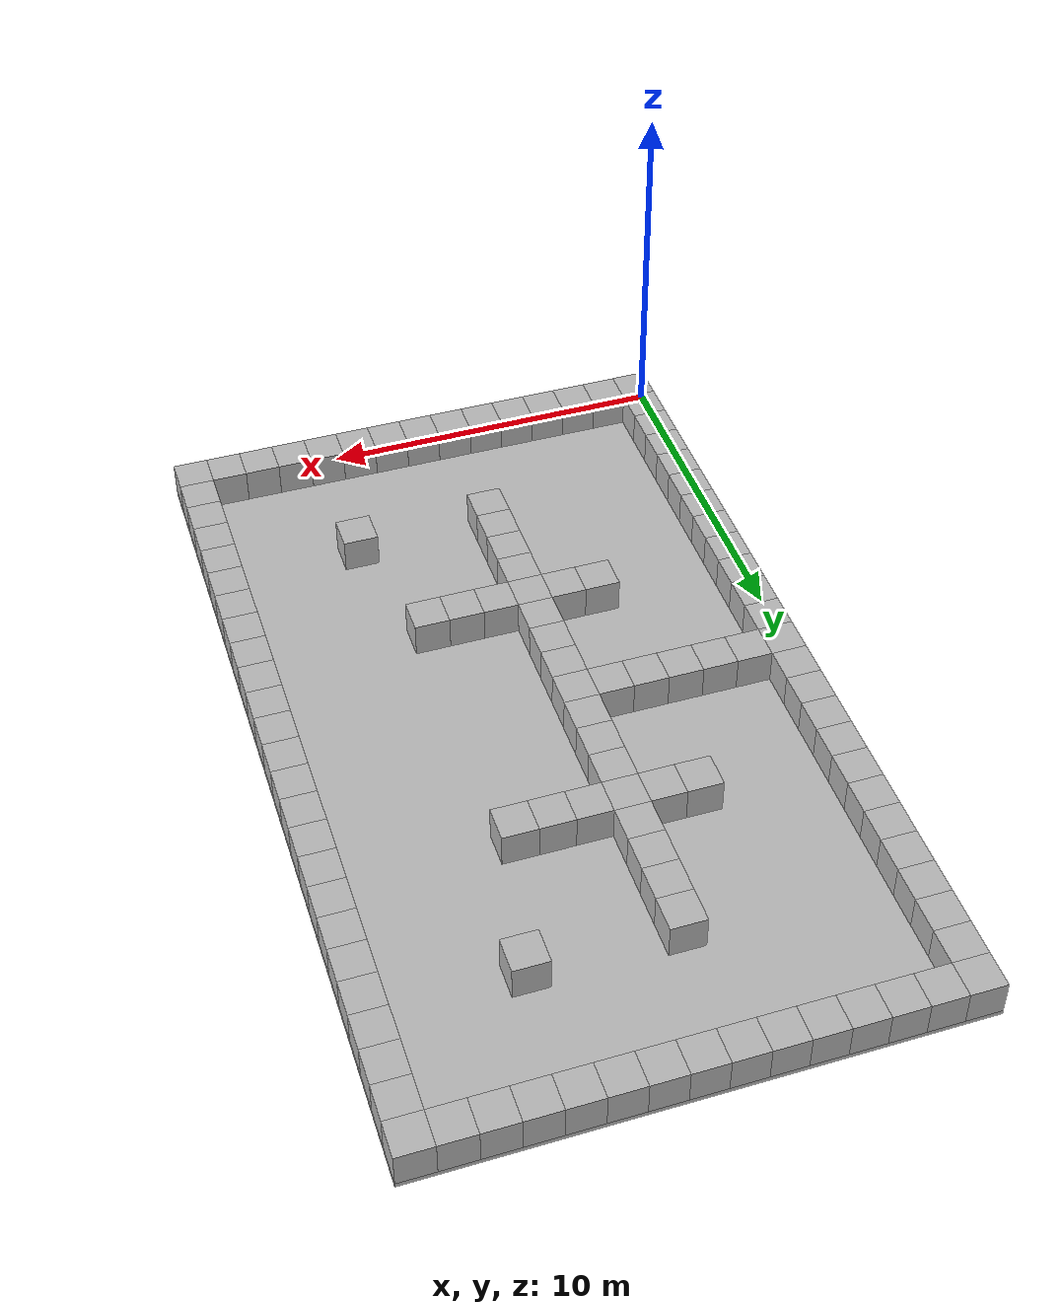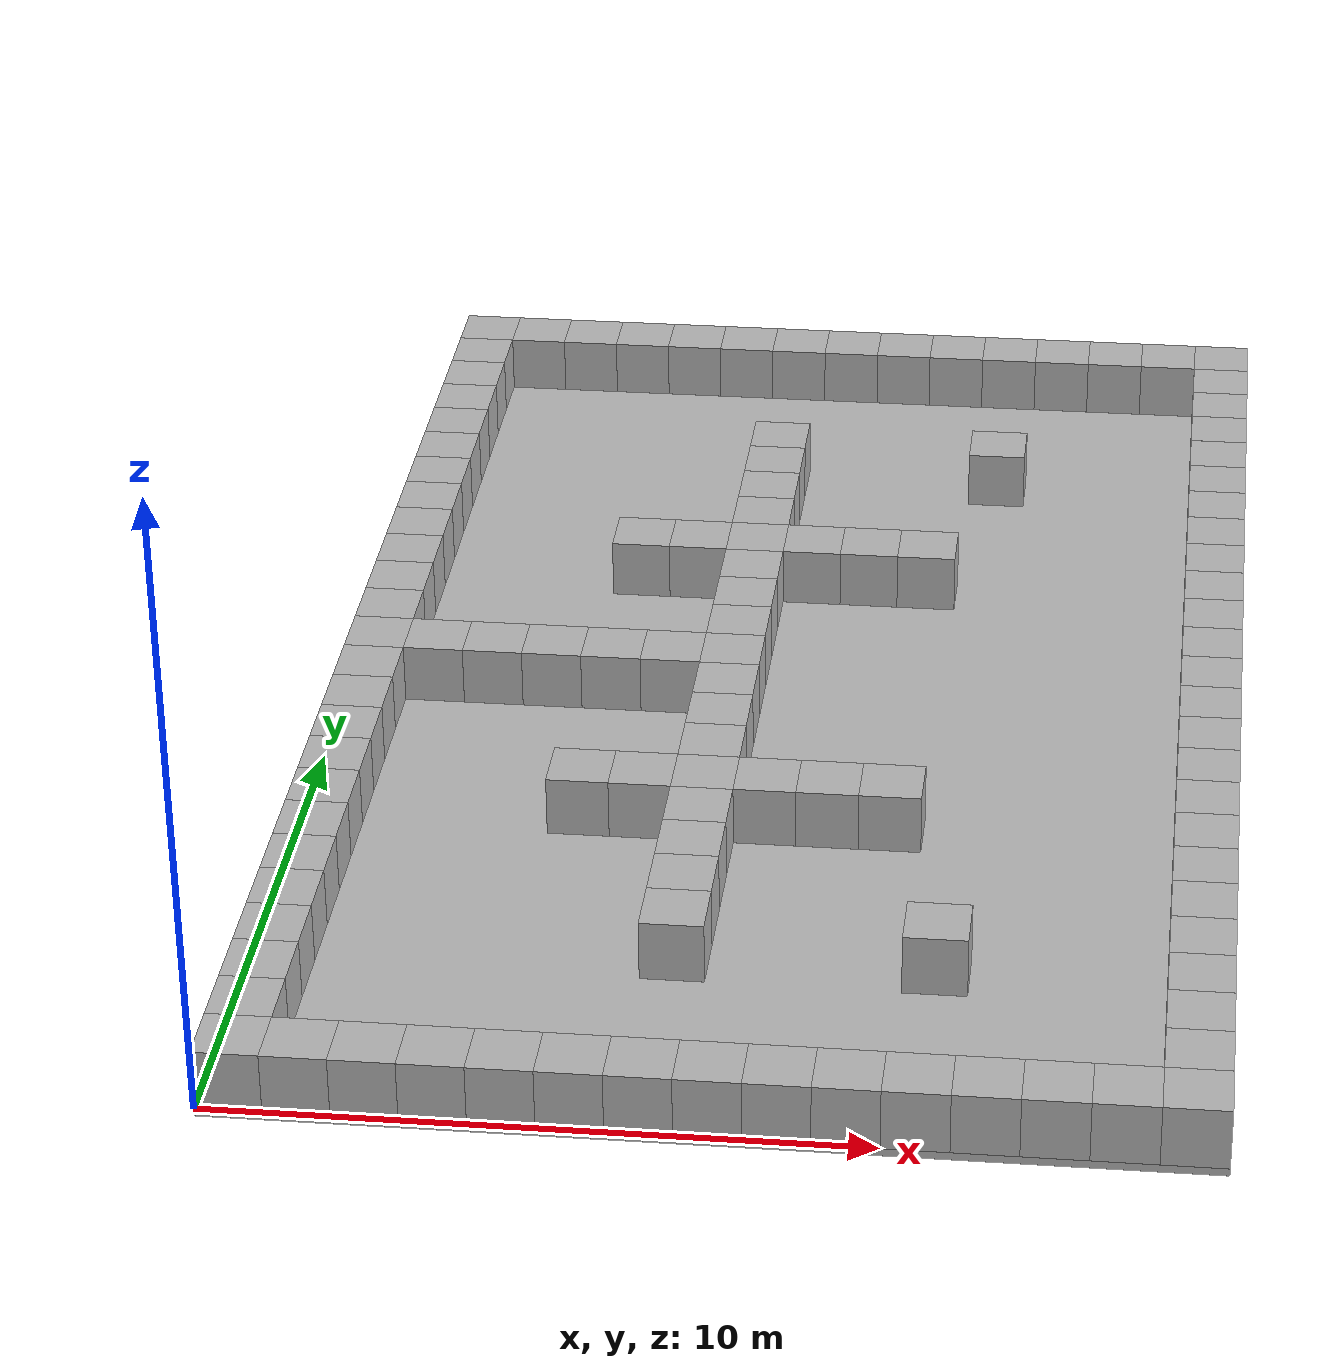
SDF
<sdf version="1.6">
 <world name="default">
  <physics name="default_physics" default="0" type="ode">
   <max_step_size>0.01</max_step_size>
   <real_time_factor>1</real_time_factor>
   <real_time_update_rate>100</real_time_update_rate>
  </physics>
  <model name="floor">
   <pose>7.5 12.5 -0.0625 0 -0 0</pose>
   <static>1</static>
   <link name="link">
    <collision name="collision"><geometry><box><size>15 25 0.125</size></box></geometry></collision>
    <visual name="visual"><geometry><box><size>15 25 0.125</size></box></geometry></visual>
   </link>
  </model>
  <model name="box_0_0">
   <pose>0.5 0.5 0.5 0 -0 0</pose>
   <static>1</static>
   <link name="link">
    <collision name="collision"><geometry><box><size>1 1 1</size></box></geometry></collision>
    <visual name="visual"><geometry><box><size>1 1 1</size></box></geometry></visual>
   </link>
  </model>
  <model name="box_0_1">
   <pose>0.5 1.5 0.5 0 -0 0</pose>
   <static>1</static>
   <link name="link">
    <collision name="collision"><geometry><box><size>1 1 1</size></box></geometry></collision>
    <visual name="visual"><geometry><box><size>1 1 1</size></box></geometry></visual>
   </link>
  </model>
  <model name="box_0_2">
   <pose>0.5 2.5 0.5 0 -0 0</pose>
   <static>1</static>
   <link name="link">
    <collision name="collision"><geometry><box><size>1 1 1</size></box></geometry></collision>
    <visual name="visual"><geometry><box><size>1 1 1</size></box></geometry></visual>
   </link>
  </model>
  <model name="box_0_3">
   <pose>0.5 3.5 0.5 0 -0 0</pose>
   <static>1</static>
   <link name="link">
    <collision name="collision"><geometry><box><size>1 1 1</size></box></geometry></collision>
    <visual name="visual"><geometry><box><size>1 1 1</size></box></geometry></visual>
   </link>
  </model>
  <model name="box_0_4">
   <pose>0.5 4.5 0.5 0 -0 0</pose>
   <static>1</static>
   <link name="link">
    <collision name="collision"><geometry><box><size>1 1 1</size></box></geometry></collision>
    <visual name="visual"><geometry><box><size>1 1 1</size></box></geometry></visual>
   </link>
  </model>
  <model name="box_0_5">
   <pose>0.5 5.5 0.5 0 -0 0</pose>
   <static>1</static>
   <link name="link">
    <collision name="collision"><geometry><box><size>1 1 1</size></box></geometry></collision>
    <visual name="visual"><geometry><box><size>1 1 1</size></box></geometry></visual>
   </link>
  </model>
  <model name="box_0_6">
   <pose>0.5 6.5 0.5 0 -0 0</pose>
   <static>1</static>
   <link name="link">
    <collision name="collision"><geometry><box><size>1 1 1</size></box></geometry></collision>
    <visual name="visual"><geometry><box><size>1 1 1</size></box></geometry></visual>
   </link>
  </model>
  <model name="box_0_7">
   <pose>0.5 7.5 0.5 0 -0 0</pose>
   <static>1</static>
   <link name="link">
    <collision name="collision"><geometry><box><size>1 1 1</size></box></geometry></collision>
    <visual name="visual"><geometry><box><size>1 1 1</size></box></geometry></visual>
   </link>
  </model>
  <model name="box_0_8">
   <pose>0.5 8.5 0.5 0 -0 0</pose>
   <static>1</static>
   <link name="link">
    <collision name="collision"><geometry><box><size>1 1 1</size></box></geometry></collision>
    <visual name="visual"><geometry><box><size>1 1 1</size></box></geometry></visual>
   </link>
  </model>
  <model name="box_0_9">
   <pose>0.5 9.5 0.5 0 -0 0</pose>
   <static>1</static>
   <link name="link">
    <collision name="collision"><geometry><box><size>1 1 1</size></box></geometry></collision>
    <visual name="visual"><geometry><box><size>1 1 1</size></box></geometry></visual>
   </link>
  </model>
  <model name="box_0_10">
   <pose>0.5 10.5 0.5 0 -0 0</pose>
   <static>1</static>
   <link name="link">
    <collision name="collision"><geometry><box><size>1 1 1</size></box></geometry></collision>
    <visual name="visual"><geometry><box><size>1 1 1</size></box></geometry></visual>
   </link>
  </model>
  <model name="box_0_11">
   <pose>0.5 11.5 0.5 0 -0 0</pose>
   <static>1</static>
   <link name="link">
    <collision name="collision"><geometry><box><size>1 1 1</size></box></geometry></collision>
    <visual name="visual"><geometry><box><size>1 1 1</size></box></geometry></visual>
   </link>
  </model>
  <model name="box_0_12">
   <pose>0.5 12.5 0.5 0 -0 0</pose>
   <static>1</static>
   <link name="link">
    <collision name="collision"><geometry><box><size>1 1 1</size></box></geometry></collision>
    <visual name="visual"><geometry><box><size>1 1 1</size></box></geometry></visual>
   </link>
  </model>
  <model name="box_0_13">
   <pose>0.5 13.5 0.5 0 -0 0</pose>
   <static>1</static>
   <link name="link">
    <collision name="collision"><geometry><box><size>1 1 1</size></box></geometry></collision>
    <visual name="visual"><geometry><box><size>1 1 1</size></box></geometry></visual>
   </link>
  </model>
  <model name="box_0_14">
   <pose>0.5 14.5 0.5 0 -0 0</pose>
   <static>1</static>
   <link name="link">
    <collision name="collision"><geometry><box><size>1 1 1</size></box></geometry></collision>
    <visual name="visual"><geometry><box><size>1 1 1</size></box></geometry></visual>
   </link>
  </model>
  <model name="box_0_15">
   <pose>0.5 15.5 0.5 0 -0 0</pose>
   <static>1</static>
   <link name="link">
    <collision name="collision"><geometry><box><size>1 1 1</size></box></geometry></collision>
    <visual name="visual"><geometry><box><size>1 1 1</size></box></geometry></visual>
   </link>
  </model>
  <model name="box_0_16">
   <pose>0.5 16.5 0.5 0 -0 0</pose>
   <static>1</static>
   <link name="link">
    <collision name="collision"><geometry><box><size>1 1 1</size></box></geometry></collision>
    <visual name="visual"><geometry><box><size>1 1 1</size></box></geometry></visual>
   </link>
  </model>
  <model name="box_0_17">
   <pose>0.5 17.5 0.5 0 -0 0</pose>
   <static>1</static>
   <link name="link">
    <collision name="collision"><geometry><box><size>1 1 1</size></box></geometry></collision>
    <visual name="visual"><geometry><box><size>1 1 1</size></box></geometry></visual>
   </link>
  </model>
  <model name="box_0_18">
   <pose>0.5 18.5 0.5 0 -0 0</pose>
   <static>1</static>
   <link name="link">
    <collision name="collision"><geometry><box><size>1 1 1</size></box></geometry></collision>
    <visual name="visual"><geometry><box><size>1 1 1</size></box></geometry></visual>
   </link>
  </model>
  <model name="box_0_19">
   <pose>0.5 19.5 0.5 0 -0 0</pose>
   <static>1</static>
   <link name="link">
    <collision name="collision"><geometry><box><size>1 1 1</size></box></geometry></collision>
    <visual name="visual"><geometry><box><size>1 1 1</size></box></geometry></visual>
   </link>
  </model>
  <model name="box_0_20">
   <pose>0.5 20.5 0.5 0 -0 0</pose>
   <static>1</static>
   <link name="link">
    <collision name="collision"><geometry><box><size>1 1 1</size></box></geometry></collision>
    <visual name="visual"><geometry><box><size>1 1 1</size></box></geometry></visual>
   </link>
  </model>
  <model name="box_0_21">
   <pose>0.5 21.5 0.5 0 -0 0</pose>
   <static>1</static>
   <link name="link">
    <collision name="collision"><geometry><box><size>1 1 1</size></box></geometry></collision>
    <visual name="visual"><geometry><box><size>1 1 1</size></box></geometry></visual>
   </link>
  </model>
  <model name="box_0_22">
   <pose>0.5 22.5 0.5 0 -0 0</pose>
   <static>1</static>
   <link name="link">
    <collision name="collision"><geometry><box><size>1 1 1</size></box></geometry></collision>
    <visual name="visual"><geometry><box><size>1 1 1</size></box></geometry></visual>
   </link>
  </model>
  <model name="box_0_23">
   <pose>0.5 23.5 0.5 0 -0 0</pose>
   <static>1</static>
   <link name="link">
    <collision name="collision"><geometry><box><size>1 1 1</size></box></geometry></collision>
    <visual name="visual"><geometry><box><size>1 1 1</size></box></geometry></visual>
   </link>
  </model>
  <model name="box_0_24">
   <pose>0.5 24.5 0.5 0 -0 0</pose>
   <static>1</static>
   <link name="link">
    <collision name="collision"><geometry><box><size>1 1 1</size></box></geometry></collision>
    <visual name="visual"><geometry><box><size>1 1 1</size></box></geometry></visual>
   </link>
  </model>
  <model name="box_1_0">
   <pose>1.5 0.5 0.5 0 -0 0</pose>
   <static>1</static>
   <link name="link">
    <collision name="collision"><geometry><box><size>1 1 1</size></box></geometry></collision>
    <visual name="visual"><geometry><box><size>1 1 1</size></box></geometry></visual>
   </link>
  </model>
  <model name="box_1_12">
   <pose>1.5 12.5 0.5 0 -0 0</pose>
   <static>1</static>
   <link name="link">
    <collision name="collision"><geometry><box><size>1 1 1</size></box></geometry></collision>
    <visual name="visual"><geometry><box><size>1 1 1</size></box></geometry></visual>
   </link>
  </model>
  <model name="box_1_24">
   <pose>1.5 24.5 0.5 0 -0 0</pose>
   <static>1</static>
   <link name="link">
    <collision name="collision"><geometry><box><size>1 1 1</size></box></geometry></collision>
    <visual name="visual"><geometry><box><size>1 1 1</size></box></geometry></visual>
   </link>
  </model>
  <model name="box_2_0">
   <pose>2.5 0.5 0.5 0 -0 0</pose>
   <static>1</static>
   <link name="link">
    <collision name="collision"><geometry><box><size>1 1 1</size></box></geometry></collision>
    <visual name="visual"><geometry><box><size>1 1 1</size></box></geometry></visual>
   </link>
  </model>
  <model name="box_2_12">
   <pose>2.5 12.5 0.5 0 -0 0</pose>
   <static>1</static>
   <link name="link">
    <collision name="collision"><geometry><box><size>1 1 1</size></box></geometry></collision>
    <visual name="visual"><geometry><box><size>1 1 1</size></box></geometry></visual>
   </link>
  </model>
  <model name="box_2_24">
   <pose>2.5 24.5 0.5 0 -0 0</pose>
   <static>1</static>
   <link name="link">
    <collision name="collision"><geometry><box><size>1 1 1</size></box></geometry></collision>
    <visual name="visual"><geometry><box><size>1 1 1</size></box></geometry></visual>
   </link>
  </model>
  <model name="box_3_0">
   <pose>3.5 0.5 0.5 0 -0 0</pose>
   <static>1</static>
   <link name="link">
    <collision name="collision"><geometry><box><size>1 1 1</size></box></geometry></collision>
    <visual name="visual"><geometry><box><size>1 1 1</size></box></geometry></visual>
   </link>
  </model>
  <model name="box_3_12">
   <pose>3.5 12.5 0.5 0 -0 0</pose>
   <static>1</static>
   <link name="link">
    <collision name="collision"><geometry><box><size>1 1 1</size></box></geometry></collision>
    <visual name="visual"><geometry><box><size>1 1 1</size></box></geometry></visual>
   </link>
  </model>
  <model name="box_3_24">
   <pose>3.5 24.5 0.5 0 -0 0</pose>
   <static>1</static>
   <link name="link">
    <collision name="collision"><geometry><box><size>1 1 1</size></box></geometry></collision>
    <visual name="visual"><geometry><box><size>1 1 1</size></box></geometry></visual>
   </link>
  </model>
  <model name="box_4_0">
   <pose>4.5 0.5 0.5 0 -0 0</pose>
   <static>1</static>
   <link name="link">
    <collision name="collision"><geometry><box><size>1 1 1</size></box></geometry></collision>
    <visual name="visual"><geometry><box><size>1 1 1</size></box></geometry></visual>
   </link>
  </model>
  <model name="box_4_8">
   <pose>4.5 8.5 0.5 0 -0 0</pose>
   <static>1</static>
   <link name="link">
    <collision name="collision"><geometry><box><size>1 1 1</size></box></geometry></collision>
    <visual name="visual"><geometry><box><size>1 1 1</size></box></geometry></visual>
   </link>
  </model>
  <model name="box_4_12">
   <pose>4.5 12.5 0.5 0 -0 0</pose>
   <static>1</static>
   <link name="link">
    <collision name="collision"><geometry><box><size>1 1 1</size></box></geometry></collision>
    <visual name="visual"><geometry><box><size>1 1 1</size></box></geometry></visual>
   </link>
  </model>
  <model name="box_4_16">
   <pose>4.5 16.5 0.5 0 -0 0</pose>
   <static>1</static>
   <link name="link">
    <collision name="collision"><geometry><box><size>1 1 1</size></box></geometry></collision>
    <visual name="visual"><geometry><box><size>1 1 1</size></box></geometry></visual>
   </link>
  </model>
  <model name="box_4_24">
   <pose>4.5 24.5 0.5 0 -0 0</pose>
   <static>1</static>
   <link name="link">
    <collision name="collision"><geometry><box><size>1 1 1</size></box></geometry></collision>
    <visual name="visual"><geometry><box><size>1 1 1</size></box></geometry></visual>
   </link>
  </model>
  <model name="box_5_0">
   <pose>5.5 0.5 0.5 0 -0 0</pose>
   <static>1</static>
   <link name="link">
    <collision name="collision"><geometry><box><size>1 1 1</size></box></geometry></collision>
    <visual name="visual"><geometry><box><size>1 1 1</size></box></geometry></visual>
   </link>
  </model>
  <model name="box_5_8">
   <pose>5.5 8.5 0.5 0 -0 0</pose>
   <static>1</static>
   <link name="link">
    <collision name="collision"><geometry><box><size>1 1 1</size></box></geometry></collision>
    <visual name="visual"><geometry><box><size>1 1 1</size></box></geometry></visual>
   </link>
  </model>
  <model name="box_5_12">
   <pose>5.5 12.5 0.5 0 -0 0</pose>
   <static>1</static>
   <link name="link">
    <collision name="collision"><geometry><box><size>1 1 1</size></box></geometry></collision>
    <visual name="visual"><geometry><box><size>1 1 1</size></box></geometry></visual>
   </link>
  </model>
  <model name="box_5_16">
   <pose>5.5 16.5 0.5 0 -0 0</pose>
   <static>1</static>
   <link name="link">
    <collision name="collision"><geometry><box><size>1 1 1</size></box></geometry></collision>
    <visual name="visual"><geometry><box><size>1 1 1</size></box></geometry></visual>
   </link>
  </model>
  <model name="box_5_24">
   <pose>5.5 24.5 0.5 0 -0 0</pose>
   <static>1</static>
   <link name="link">
    <collision name="collision"><geometry><box><size>1 1 1</size></box></geometry></collision>
    <visual name="visual"><geometry><box><size>1 1 1</size></box></geometry></visual>
   </link>
  </model>
  <model name="box_6_0">
   <pose>6.5 0.5 0.5 0 -0 0</pose>
   <static>1</static>
   <link name="link">
    <collision name="collision"><geometry><box><size>1 1 1</size></box></geometry></collision>
    <visual name="visual"><geometry><box><size>1 1 1</size></box></geometry></visual>
   </link>
  </model>
  <model name="box_6_4">
   <pose>6.5 4.5 0.5 0 -0 0</pose>
   <static>1</static>
   <link name="link">
    <collision name="collision"><geometry><box><size>1 1 1</size></box></geometry></collision>
    <visual name="visual"><geometry><box><size>1 1 1</size></box></geometry></visual>
   </link>
  </model>
  <model name="box_6_5">
   <pose>6.5 5.5 0.5 0 -0 0</pose>
   <static>1</static>
   <link name="link">
    <collision name="collision"><geometry><box><size>1 1 1</size></box></geometry></collision>
    <visual name="visual"><geometry><box><size>1 1 1</size></box></geometry></visual>
   </link>
  </model>
  <model name="box_6_6">
   <pose>6.5 6.5 0.5 0 -0 0</pose>
   <static>1</static>
   <link name="link">
    <collision name="collision"><geometry><box><size>1 1 1</size></box></geometry></collision>
    <visual name="visual"><geometry><box><size>1 1 1</size></box></geometry></visual>
   </link>
  </model>
  <model name="box_6_7">
   <pose>6.5 7.5 0.5 0 -0 0</pose>
   <static>1</static>
   <link name="link">
    <collision name="collision"><geometry><box><size>1 1 1</size></box></geometry></collision>
    <visual name="visual"><geometry><box><size>1 1 1</size></box></geometry></visual>
   </link>
  </model>
  <model name="box_6_8">
   <pose>6.5 8.5 0.5 0 -0 0</pose>
   <static>1</static>
   <link name="link">
    <collision name="collision"><geometry><box><size>1 1 1</size></box></geometry></collision>
    <visual name="visual"><geometry><box><size>1 1 1</size></box></geometry></visual>
   </link>
  </model>
  <model name="box_6_9">
   <pose>6.5 9.5 0.5 0 -0 0</pose>
   <static>1</static>
   <link name="link">
    <collision name="collision"><geometry><box><size>1 1 1</size></box></geometry></collision>
    <visual name="visual"><geometry><box><size>1 1 1</size></box></geometry></visual>
   </link>
  </model>
  <model name="box_6_10">
   <pose>6.5 10.5 0.5 0 -0 0</pose>
   <static>1</static>
   <link name="link">
    <collision name="collision"><geometry><box><size>1 1 1</size></box></geometry></collision>
    <visual name="visual"><geometry><box><size>1 1 1</size></box></geometry></visual>
   </link>
  </model>
  <model name="box_6_11">
   <pose>6.5 11.5 0.5 0 -0 0</pose>
   <static>1</static>
   <link name="link">
    <collision name="collision"><geometry><box><size>1 1 1</size></box></geometry></collision>
    <visual name="visual"><geometry><box><size>1 1 1</size></box></geometry></visual>
   </link>
  </model>
  <model name="box_6_12">
   <pose>6.5 12.5 0.5 0 -0 0</pose>
   <static>1</static>
   <link name="link">
    <collision name="collision"><geometry><box><size>1 1 1</size></box></geometry></collision>
    <visual name="visual"><geometry><box><size>1 1 1</size></box></geometry></visual>
   </link>
  </model>
  <model name="box_6_13">
   <pose>6.5 13.5 0.5 0 -0 0</pose>
   <static>1</static>
   <link name="link">
    <collision name="collision"><geometry><box><size>1 1 1</size></box></geometry></collision>
    <visual name="visual"><geometry><box><size>1 1 1</size></box></geometry></visual>
   </link>
  </model>
  <model name="box_6_14">
   <pose>6.5 14.5 0.5 0 -0 0</pose>
   <static>1</static>
   <link name="link">
    <collision name="collision"><geometry><box><size>1 1 1</size></box></geometry></collision>
    <visual name="visual"><geometry><box><size>1 1 1</size></box></geometry></visual>
   </link>
  </model>
  <model name="box_6_15">
   <pose>6.5 15.5 0.5 0 -0 0</pose>
   <static>1</static>
   <link name="link">
    <collision name="collision"><geometry><box><size>1 1 1</size></box></geometry></collision>
    <visual name="visual"><geometry><box><size>1 1 1</size></box></geometry></visual>
   </link>
  </model>
  <model name="box_6_16">
   <pose>6.5 16.5 0.5 0 -0 0</pose>
   <static>1</static>
   <link name="link">
    <collision name="collision"><geometry><box><size>1 1 1</size></box></geometry></collision>
    <visual name="visual"><geometry><box><size>1 1 1</size></box></geometry></visual>
   </link>
  </model>
  <model name="box_6_17">
   <pose>6.5 17.5 0.5 0 -0 0</pose>
   <static>1</static>
   <link name="link">
    <collision name="collision"><geometry><box><size>1 1 1</size></box></geometry></collision>
    <visual name="visual"><geometry><box><size>1 1 1</size></box></geometry></visual>
   </link>
  </model>
  <model name="box_6_18">
   <pose>6.5 18.5 0.5 0 -0 0</pose>
   <static>1</static>
   <link name="link">
    <collision name="collision"><geometry><box><size>1 1 1</size></box></geometry></collision>
    <visual name="visual"><geometry><box><size>1 1 1</size></box></geometry></visual>
   </link>
  </model>
  <model name="box_6_19">
   <pose>6.5 19.5 0.5 0 -0 0</pose>
   <static>1</static>
   <link name="link">
    <collision name="collision"><geometry><box><size>1 1 1</size></box></geometry></collision>
    <visual name="visual"><geometry><box><size>1 1 1</size></box></geometry></visual>
   </link>
  </model>
  <model name="box_6_20">
   <pose>6.5 20.5 0.5 0 -0 0</pose>
   <static>1</static>
   <link name="link">
    <collision name="collision"><geometry><box><size>1 1 1</size></box></geometry></collision>
    <visual name="visual"><geometry><box><size>1 1 1</size></box></geometry></visual>
   </link>
  </model>
  <model name="box_6_24">
   <pose>6.5 24.5 0.5 0 -0 0</pose>
   <static>1</static>
   <link name="link">
    <collision name="collision"><geometry><box><size>1 1 1</size></box></geometry></collision>
    <visual name="visual"><geometry><box><size>1 1 1</size></box></geometry></visual>
   </link>
  </model>
  <model name="box_7_0">
   <pose>7.5 0.5 0.5 0 -0 0</pose>
   <static>1</static>
   <link name="link">
    <collision name="collision"><geometry><box><size>1 1 1</size></box></geometry></collision>
    <visual name="visual"><geometry><box><size>1 1 1</size></box></geometry></visual>
   </link>
  </model>
  <model name="box_7_8">
   <pose>7.5 8.5 0.5 0 -0 0</pose>
   <static>1</static>
   <link name="link">
    <collision name="collision"><geometry><box><size>1 1 1</size></box></geometry></collision>
    <visual name="visual"><geometry><box><size>1 1 1</size></box></geometry></visual>
   </link>
  </model>
  <model name="box_7_16">
   <pose>7.5 16.5 0.5 0 -0 0</pose>
   <static>1</static>
   <link name="link">
    <collision name="collision"><geometry><box><size>1 1 1</size></box></geometry></collision>
    <visual name="visual"><geometry><box><size>1 1 1</size></box></geometry></visual>
   </link>
  </model>
  <model name="box_7_24">
   <pose>7.5 24.5 0.5 0 -0 0</pose>
   <static>1</static>
   <link name="link">
    <collision name="collision"><geometry><box><size>1 1 1</size></box></geometry></collision>
    <visual name="visual"><geometry><box><size>1 1 1</size></box></geometry></visual>
   </link>
  </model>
  <model name="box_8_0">
   <pose>8.5 0.5 0.5 0 -0 0</pose>
   <static>1</static>
   <link name="link">
    <collision name="collision"><geometry><box><size>1 1 1</size></box></geometry></collision>
    <visual name="visual"><geometry><box><size>1 1 1</size></box></geometry></visual>
   </link>
  </model>
  <model name="box_8_8">
   <pose>8.5 8.5 0.5 0 -0 0</pose>
   <static>1</static>
   <link name="link">
    <collision name="collision"><geometry><box><size>1 1 1</size></box></geometry></collision>
    <visual name="visual"><geometry><box><size>1 1 1</size></box></geometry></visual>
   </link>
  </model>
  <model name="box_8_16">
   <pose>8.5 16.5 0.5 0 -0 0</pose>
   <static>1</static>
   <link name="link">
    <collision name="collision"><geometry><box><size>1 1 1</size></box></geometry></collision>
    <visual name="visual"><geometry><box><size>1 1 1</size></box></geometry></visual>
   </link>
  </model>
  <model name="box_8_24">
   <pose>8.5 24.5 0.5 0 -0 0</pose>
   <static>1</static>
   <link name="link">
    <collision name="collision"><geometry><box><size>1 1 1</size></box></geometry></collision>
    <visual name="visual"><geometry><box><size>1 1 1</size></box></geometry></visual>
   </link>
  </model>
  <model name="box_9_0">
   <pose>9.5 0.5 0.5 0 -0 0</pose>
   <static>1</static>
   <link name="link">
    <collision name="collision"><geometry><box><size>1 1 1</size></box></geometry></collision>
    <visual name="visual"><geometry><box><size>1 1 1</size></box></geometry></visual>
   </link>
  </model>
  <model name="box_9_8">
   <pose>9.5 8.5 0.5 0 -0 0</pose>
   <static>1</static>
   <link name="link">
    <collision name="collision"><geometry><box><size>1 1 1</size></box></geometry></collision>
    <visual name="visual"><geometry><box><size>1 1 1</size></box></geometry></visual>
   </link>
  </model>
  <model name="box_9_16">
   <pose>9.5 16.5 0.5 0 -0 0</pose>
   <static>1</static>
   <link name="link">
    <collision name="collision"><geometry><box><size>1 1 1</size></box></geometry></collision>
    <visual name="visual"><geometry><box><size>1 1 1</size></box></geometry></visual>
   </link>
  </model>
  <model name="box_9_24">
   <pose>9.5 24.5 0.5 0 -0 0</pose>
   <static>1</static>
   <link name="link">
    <collision name="collision"><geometry><box><size>1 1 1</size></box></geometry></collision>
    <visual name="visual"><geometry><box><size>1 1 1</size></box></geometry></visual>
   </link>
  </model>
  <model name="box_10_0">
   <pose>10.5 0.5 0.5 0 -0 0</pose>
   <static>1</static>
   <link name="link">
    <collision name="collision"><geometry><box><size>1 1 1</size></box></geometry></collision>
    <visual name="visual"><geometry><box><size>1 1 1</size></box></geometry></visual>
   </link>
  </model>
  <model name="box_10_4">
   <pose>10.5 4.5 0.5 0 -0 0</pose>
   <static>1</static>
   <link name="link">
    <collision name="collision"><geometry><box><size>1 1 1</size></box></geometry></collision>
    <visual name="visual"><geometry><box><size>1 1 1</size></box></geometry></visual>
   </link>
  </model>
  <model name="box_10_20">
   <pose>10.5 20.5 0.5 0 -0 0</pose>
   <static>1</static>
   <link name="link">
    <collision name="collision"><geometry><box><size>1 1 1</size></box></geometry></collision>
    <visual name="visual"><geometry><box><size>1 1 1</size></box></geometry></visual>
   </link>
  </model>
  <model name="box_10_24">
   <pose>10.5 24.5 0.5 0 -0 0</pose>
   <static>1</static>
   <link name="link">
    <collision name="collision"><geometry><box><size>1 1 1</size></box></geometry></collision>
    <visual name="visual"><geometry><box><size>1 1 1</size></box></geometry></visual>
   </link>
  </model>
  <model name="box_11_0">
   <pose>11.5 0.5 0.5 0 -0 0</pose>
   <static>1</static>
   <link name="link">
    <collision name="collision"><geometry><box><size>1 1 1</size></box></geometry></collision>
    <visual name="visual"><geometry><box><size>1 1 1</size></box></geometry></visual>
   </link>
  </model>
  <model name="box_11_24">
   <pose>11.5 24.5 0.5 0 -0 0</pose>
   <static>1</static>
   <link name="link">
    <collision name="collision"><geometry><box><size>1 1 1</size></box></geometry></collision>
    <visual name="visual"><geometry><box><size>1 1 1</size></box></geometry></visual>
   </link>
  </model>
  <model name="box_12_0">
   <pose>12.5 0.5 0.5 0 -0 0</pose>
   <static>1</static>
   <link name="link">
    <collision name="collision"><geometry><box><size>1 1 1</size></box></geometry></collision>
    <visual name="visual"><geometry><box><size>1 1 1</size></box></geometry></visual>
   </link>
  </model>
  <model name="box_12_24">
   <pose>12.5 24.5 0.5 0 -0 0</pose>
   <static>1</static>
   <link name="link">
    <collision name="collision"><geometry><box><size>1 1 1</size></box></geometry></collision>
    <visual name="visual"><geometry><box><size>1 1 1</size></box></geometry></visual>
   </link>
  </model>
  <model name="box_13_0">
   <pose>13.5 0.5 0.5 0 -0 0</pose>
   <static>1</static>
   <link name="link">
    <collision name="collision"><geometry><box><size>1 1 1</size></box></geometry></collision>
    <visual name="visual"><geometry><box><size>1 1 1</size></box></geometry></visual>
   </link>
  </model>
  <model name="box_13_24">
   <pose>13.5 24.5 0.5 0 -0 0</pose>
   <static>1</static>
   <link name="link">
    <collision name="collision"><geometry><box><size>1 1 1</size></box></geometry></collision>
    <visual name="visual"><geometry><box><size>1 1 1</size></box></geometry></visual>
   </link>
  </model>
  <model name="box_14_0">
   <pose>14.5 0.5 0.5 0 -0 0</pose>
   <static>1</static>
   <link name="link">
    <collision name="collision"><geometry><box><size>1 1 1</size></box></geometry></collision>
    <visual name="visual"><geometry><box><size>1 1 1</size></box></geometry></visual>
   </link>
  </model>
  <model name="box_14_1">
   <pose>14.5 1.5 0.5 0 -0 0</pose>
   <static>1</static>
   <link name="link">
    <collision name="collision"><geometry><box><size>1 1 1</size></box></geometry></collision>
    <visual name="visual"><geometry><box><size>1 1 1</size></box></geometry></visual>
   </link>
  </model>
  <model name="box_14_2">
   <pose>14.5 2.5 0.5 0 -0 0</pose>
   <static>1</static>
   <link name="link">
    <collision name="collision"><geometry><box><size>1 1 1</size></box></geometry></collision>
    <visual name="visual"><geometry><box><size>1 1 1</size></box></geometry></visual>
   </link>
  </model>
  <model name="box_14_3">
   <pose>14.5 3.5 0.5 0 -0 0</pose>
   <static>1</static>
   <link name="link">
    <collision name="collision"><geometry><box><size>1 1 1</size></box></geometry></collision>
    <visual name="visual"><geometry><box><size>1 1 1</size></box></geometry></visual>
   </link>
  </model>
  <model name="box_14_4">
   <pose>14.5 4.5 0.5 0 -0 0</pose>
   <static>1</static>
   <link name="link">
    <collision name="collision"><geometry><box><size>1 1 1</size></box></geometry></collision>
    <visual name="visual"><geometry><box><size>1 1 1</size></box></geometry></visual>
   </link>
  </model>
  <model name="box_14_5">
   <pose>14.5 5.5 0.5 0 -0 0</pose>
   <static>1</static>
   <link name="link">
    <collision name="collision"><geometry><box><size>1 1 1</size></box></geometry></collision>
    <visual name="visual"><geometry><box><size>1 1 1</size></box></geometry></visual>
   </link>
  </model>
  <model name="box_14_6">
   <pose>14.5 6.5 0.5 0 -0 0</pose>
   <static>1</static>
   <link name="link">
    <collision name="collision"><geometry><box><size>1 1 1</size></box></geometry></collision>
    <visual name="visual"><geometry><box><size>1 1 1</size></box></geometry></visual>
   </link>
  </model>
  <model name="box_14_7">
   <pose>14.5 7.5 0.5 0 -0 0</pose>
   <static>1</static>
   <link name="link">
    <collision name="collision"><geometry><box><size>1 1 1</size></box></geometry></collision>
    <visual name="visual"><geometry><box><size>1 1 1</size></box></geometry></visual>
   </link>
  </model>
  <model name="box_14_8">
   <pose>14.5 8.5 0.5 0 -0 0</pose>
   <static>1</static>
   <link name="link">
    <collision name="collision"><geometry><box><size>1 1 1</size></box></geometry></collision>
    <visual name="visual"><geometry><box><size>1 1 1</size></box></geometry></visual>
   </link>
  </model>
  <model name="box_14_9">
   <pose>14.5 9.5 0.5 0 -0 0</pose>
   <static>1</static>
   <link name="link">
    <collision name="collision"><geometry><box><size>1 1 1</size></box></geometry></collision>
    <visual name="visual"><geometry><box><size>1 1 1</size></box></geometry></visual>
   </link>
  </model>
  <model name="box_14_10">
   <pose>14.5 10.5 0.5 0 -0 0</pose>
   <static>1</static>
   <link name="link">
    <collision name="collision"><geometry><box><size>1 1 1</size></box></geometry></collision>
    <visual name="visual"><geometry><box><size>1 1 1</size></box></geometry></visual>
   </link>
  </model>
  <model name="box_14_11">
   <pose>14.5 11.5 0.5 0 -0 0</pose>
   <static>1</static>
   <link name="link">
    <collision name="collision"><geometry><box><size>1 1 1</size></box></geometry></collision>
    <visual name="visual"><geometry><box><size>1 1 1</size></box></geometry></visual>
   </link>
  </model>
  <model name="box_14_12">
   <pose>14.5 12.5 0.5 0 -0 0</pose>
   <static>1</static>
   <link name="link">
    <collision name="collision"><geometry><box><size>1 1 1</size></box></geometry></collision>
    <visual name="visual"><geometry><box><size>1 1 1</size></box></geometry></visual>
   </link>
  </model>
  <model name="box_14_13">
   <pose>14.5 13.5 0.5 0 -0 0</pose>
   <static>1</static>
   <link name="link">
    <collision name="collision"><geometry><box><size>1 1 1</size></box></geometry></collision>
    <visual name="visual"><geometry><box><size>1 1 1</size></box></geometry></visual>
   </link>
  </model>
  <model name="box_14_14">
   <pose>14.5 14.5 0.5 0 -0 0</pose>
   <static>1</static>
   <link name="link">
    <collision name="collision"><geometry><box><size>1 1 1</size></box></geometry></collision>
    <visual name="visual"><geometry><box><size>1 1 1</size></box></geometry></visual>
   </link>
  </model>
  <model name="box_14_15">
   <pose>14.5 15.5 0.5 0 -0 0</pose>
   <static>1</static>
   <link name="link">
    <collision name="collision"><geometry><box><size>1 1 1</size></box></geometry></collision>
    <visual name="visual"><geometry><box><size>1 1 1</size></box></geometry></visual>
   </link>
  </model>
  <model name="box_14_16">
   <pose>14.5 16.5 0.5 0 -0 0</pose>
   <static>1</static>
   <link name="link">
    <collision name="collision"><geometry><box><size>1 1 1</size></box></geometry></collision>
    <visual name="visual"><geometry><box><size>1 1 1</size></box></geometry></visual>
   </link>
  </model>
  <model name="box_14_17">
   <pose>14.5 17.5 0.5 0 -0 0</pose>
   <static>1</static>
   <link name="link">
    <collision name="collision"><geometry><box><size>1 1 1</size></box></geometry></collision>
    <visual name="visual"><geometry><box><size>1 1 1</size></box></geometry></visual>
   </link>
  </model>
  <model name="box_14_18">
   <pose>14.5 18.5 0.5 0 -0 0</pose>
   <static>1</static>
   <link name="link">
    <collision name="collision"><geometry><box><size>1 1 1</size></box></geometry></collision>
    <visual name="visual"><geometry><box><size>1 1 1</size></box></geometry></visual>
   </link>
  </model>
  <model name="box_14_19">
   <pose>14.5 19.5 0.5 0 -0 0</pose>
   <static>1</static>
   <link name="link">
    <collision name="collision"><geometry><box><size>1 1 1</size></box></geometry></collision>
    <visual name="visual"><geometry><box><size>1 1 1</size></box></geometry></visual>
   </link>
  </model>
  <model name="box_14_20">
   <pose>14.5 20.5 0.5 0 -0 0</pose>
   <static>1</static>
   <link name="link">
    <collision name="collision"><geometry><box><size>1 1 1</size></box></geometry></collision>
    <visual name="visual"><geometry><box><size>1 1 1</size></box></geometry></visual>
   </link>
  </model>
  <model name="box_14_21">
   <pose>14.5 21.5 0.5 0 -0 0</pose>
   <static>1</static>
   <link name="link">
    <collision name="collision"><geometry><box><size>1 1 1</size></box></geometry></collision>
    <visual name="visual"><geometry><box><size>1 1 1</size></box></geometry></visual>
   </link>
  </model>
  <model name="box_14_22">
   <pose>14.5 22.5 0.5 0 -0 0</pose>
   <static>1</static>
   <link name="link">
    <collision name="collision"><geometry><box><size>1 1 1</size></box></geometry></collision>
    <visual name="visual"><geometry><box><size>1 1 1</size></box></geometry></visual>
   </link>
  </model>
  <model name="box_14_23">
   <pose>14.5 23.5 0.5 0 -0 0</pose>
   <static>1</static>
   <link name="link">
    <collision name="collision"><geometry><box><size>1 1 1</size></box></geometry></collision>
    <visual name="visual"><geometry><box><size>1 1 1</size></box></geometry></visual>
   </link>
  </model>
  <model name="box_14_24">
   <pose>14.5 24.5 0.5 0 -0 0</pose>
   <static>1</static>
   <link name="link">
    <collision name="collision"><geometry><box><size>1 1 1</size></box></geometry></collision>
    <visual name="visual"><geometry><box><size>1 1 1</size></box></geometry></visual>
   </link>
  </model>
  <gravity>0 0 -9.8</gravity>
  <magnetic_field>6e-06 2.3e-05 -4.2e-05</magnetic_field>
  <atmosphere type="adiabatic"/>
  <scene><ambient>0.4 0.4 0.4 1</ambient><background>0.7 0.7 0.7 1</background><shadows>1</shadows></scene>
  <audio><device>default</device></audio>
  <spherical_coordinates>
   <surface_model>EARTH_WGS84</surface_model>
   <latitude_deg>0</latitude_deg>
   <longitude_deg>0</longitude_deg>
   <elevation>0</elevation>
   <heading_deg>0</heading_deg>
  </spherical_coordinates>
  <light name="user_directional_light_0" type="directional">
   <pose>8.37013 12.0614 1 0 -0 0</pose>
   <diffuse>0.5 0.5 0.5 1</diffuse>
   <specular>0.1 0.1 0.1 1</specular>
   <direction>0.1 0.1 -0.9</direction>
   <attenuation>
    <range>20</range>
    <constant>0.5</constant>
    <linear>0.01</linear>
    <quadratic>0.001</quadratic>
   </attenuation>
  </light>
 </world>
</sdf>
